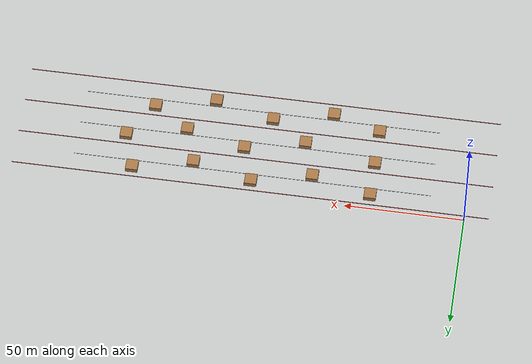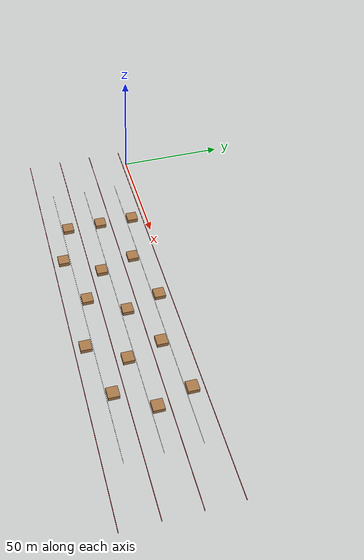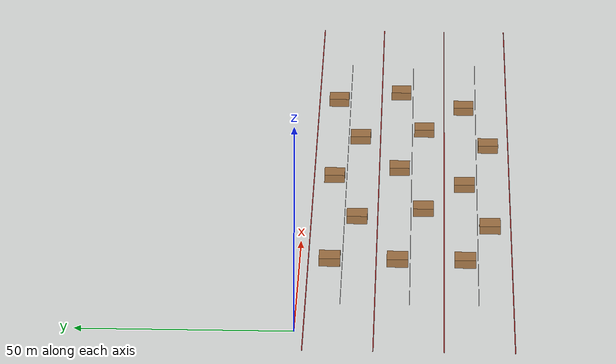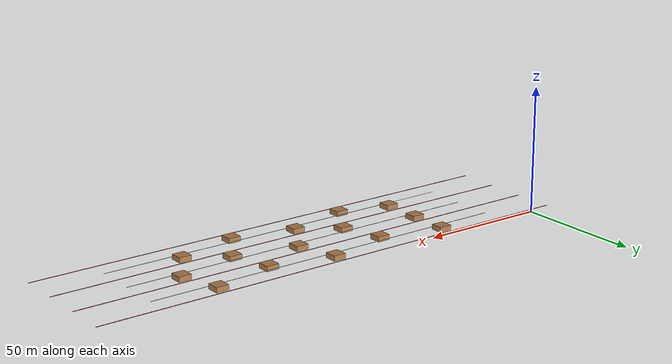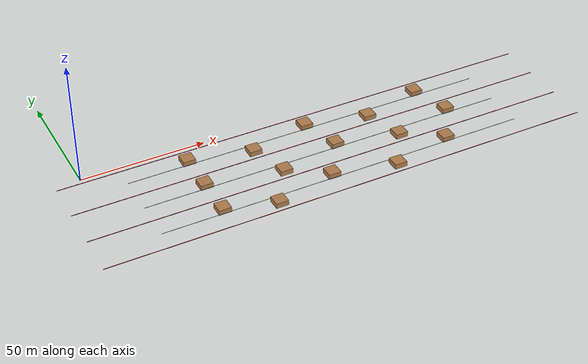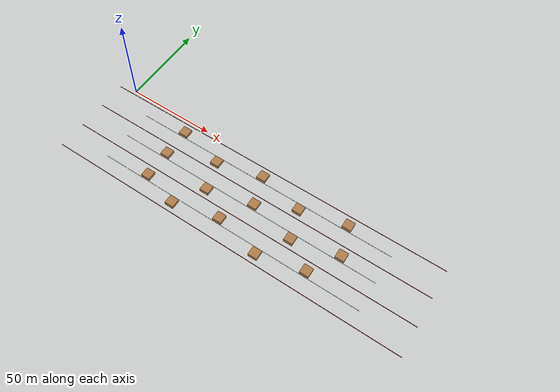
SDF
<sdf version="1.7">
 <world name="ocean_usv_world">
  <scene>
   <sky><clouds><speed>12</speed></clouds></sky>
   <grid>0</grid>
   <origin_visual>0</origin_visual>
   <ambient>0.4 0.4 0.4 1</ambient>
   <background>0.7 0.7 0.7 1</background>
   <shadows>1</shadows>
  </scene>
  <spherical_coordinates>
   <surface_model>EARTH_WGS84</surface_model>
   <world_frame_orientation>ENU</world_frame_orientation>
   <latitude_deg>-33.7242</latitude_deg>
   <longitude_deg>150.68</longitude_deg>
   <elevation>0</elevation>
   <heading_deg>0</heading_deg>
  </spherical_coordinates>
  <light name="sun" type="directional">
   <pose>0 0 10 0 -0 0</pose>
   <diffuse>0.8 0.8 0.8 1</diffuse>
   <specular>0.2 0.2 0.2 1</specular>
   <attenuation>
    <range>1000</range>
    <constant>0.9</constant>
    <linear>0.01</linear>
    <quadratic>0.001</quadratic>
   </attenuation>
   <direction>-0.5 0.1 -0.9</direction>
   <spot><inner_angle>0</inner_angle><outer_angle>0</outer_angle><falloff>0</falloff></spot>
  </light>
  <plugin name="wind" filename="libusv_gazebo_wind_plugin.so">
   <wind_obj>
    <name>wamv</name>
    <link_name>wamv/base_link</link_name>
    <coeff_vector>.5 .5 .33</coeff_vector>
   </wind_obj>
   <wind_direction>270</wind_direction>
   <wind_mean_velocity>0</wind_mean_velocity>
   <var_wind_gain_constants>0</var_wind_gain_constants>
   <var_wind_time_constants>2</var_wind_time_constants>
   <update_rate>10</update_rate>
   <topic_wind_speed>/vrx/debug/wind/speed</topic_wind_speed>
   <topic_wind_direction>/vrx/debug/wind/direction</topic_wind_direction>
  </plugin>
  <gravity>0 0 -9.8</gravity>
  <magnetic_field>6e-06 2.3e-05 -4.2e-05</magnetic_field>
  <atmosphere type="adiabatic"/>
  <physics type="ode">
   <max_step_size>0.001</max_step_size>
   <real_time_factor>1</real_time_factor>
   <real_time_update_rate>1000</real_time_update_rate>
  </physics>
  <model name="BOX_0">
   <link name="BOX_0_link">
    <inertial>
     <pose>40.0 -7.0 0.3 0 0 0</pose>
     <mass>10.0</mass>
     <inertia>
      <ixx>20.833333333333332</ixx>
      <ixy>0</ixy>
      <ixz>0</ixz>
      <iyy>20.833333333333332</iyy>
      <iyz>0</iyz>
      <izz>41.666666666666664</izz>
     </inertia>
    </inertial>
    <collision name="BOX_0_link_collision">
     <pose>40.0 -7.0 0.3 0 0 0</pose>
     <geometry><box><size>5.0 5.0 2.0</size></box></geometry>
     <surface>
      <contact><ode><kp>100000</kp><kd>100000</kd></ode></contact>
      <friction><ode><mu>10</mu><mu2>10</mu2></ode></friction>
     </surface>
    </collision>
    <visual name="BOX_0_link_visual">
     <pose>40.0 -7.0 0.3 0 0 0</pose>
     <geometry><box><size>5.0 5.0 2.0</size></box></geometry>
     <material>
      <script><name>Gazebo/WoodFloor</name><uri>file://media/materials/scripts/gazebo.material</uri></script>
     </material>
    </visual>
   </link>
   <plugin name="BuoyancyPlugin" filename="libbuoyancy_gazebo_plugin.so">
    <wave_model>ocean_waves</wave_model>
    <fluid_density>1000</fluid_density>
    <fluid_level>0</fluid_level>
    <linear_drag>1000.0</linear_drag>
    <angular_drag>200.0</angular_drag>
    <buoyancy name="buoyancy_base">
     <link_name>BOX_0_link</link_name>
     <pose>40.0 -7.0 0.3 0 0 0</pose>
     <geometry><sphere><radius>0.28794119114848615</radius></sphere></geometry>
    </buoyancy>
   </plugin>
  </model>
  <model name="BOX_1">
   <link name="BOX_1_link">
    <inertial>
     <pose>65.0 -13.0 0.3 0 0 0</pose>
     <mass>10.0</mass>
     <inertia>
      <ixx>20.833333333333332</ixx>
      <ixy>0</ixy>
      <ixz>0</ixz>
      <iyy>20.833333333333332</iyy>
      <iyz>0</iyz>
      <izz>41.666666666666664</izz>
     </inertia>
    </inertial>
    <collision name="BOX_1_link_collision">
     <pose>65.0 -13.0 0.3 0 0 0</pose>
     <geometry><box><size>5.0 5.0 2.0</size></box></geometry>
     <surface>
      <contact><ode><kp>100000</kp><kd>100000</kd></ode></contact>
      <friction><ode><mu>10</mu><mu2>10</mu2></ode></friction>
     </surface>
    </collision>
    <visual name="BOX_1_link_visual">
     <pose>65.0 -13.0 0.3 0 0 0</pose>
     <geometry><box><size>5.0 5.0 2.0</size></box></geometry>
     <material>
      <script><name>Gazebo/WoodFloor</name><uri>file://media/materials/scripts/gazebo.material</uri></script>
     </material>
    </visual>
   </link>
   <plugin name="BuoyancyPlugin" filename="libbuoyancy_gazebo_plugin.so">
    <wave_model>ocean_waves</wave_model>
    <fluid_density>1000</fluid_density>
    <fluid_level>0</fluid_level>
    <linear_drag>1000.0</linear_drag>
    <angular_drag>200.0</angular_drag>
    <buoyancy name="buoyancy_base">
     <link_name>BOX_1_link</link_name>
     <pose>65.0 -13.0 0.3 0 0 0</pose>
     <geometry><sphere><radius>0.28794119114848615</radius></sphere></geometry>
    </buoyancy>
   </plugin>
  </model>
  <model name="BOX_2">
   <link name="BOX_2_link">
    <inertial>
     <pose>90.0 -7.0 0.3 0 0 0</pose>
     <mass>10.0</mass>
     <inertia>
      <ixx>20.833333333333332</ixx>
      <ixy>0</ixy>
      <ixz>0</ixz>
      <iyy>20.833333333333332</iyy>
      <iyz>0</iyz>
      <izz>41.666666666666664</izz>
     </inertia>
    </inertial>
    <collision name="BOX_2_link_collision">
     <pose>90.0 -7.0 0.3 0 0 0</pose>
     <geometry><box><size>5.0 5.0 2.0</size></box></geometry>
     <surface>
      <contact><ode><kp>100000</kp><kd>100000</kd></ode></contact>
      <friction><ode><mu>10</mu><mu2>10</mu2></ode></friction>
     </surface>
    </collision>
    <visual name="BOX_2_link_visual">
     <pose>90.0 -7.0 0.3 0 0 0</pose>
     <geometry><box><size>5.0 5.0 2.0</size></box></geometry>
     <material>
      <script><name>Gazebo/WoodFloor</name><uri>file://media/materials/scripts/gazebo.material</uri></script>
     </material>
    </visual>
   </link>
   <plugin name="BuoyancyPlugin" filename="libbuoyancy_gazebo_plugin.so">
    <wave_model>ocean_waves</wave_model>
    <fluid_density>1000</fluid_density>
    <fluid_level>0</fluid_level>
    <linear_drag>1000.0</linear_drag>
    <angular_drag>200.0</angular_drag>
    <buoyancy name="buoyancy_base">
     <link_name>BOX_2_link</link_name>
     <pose>90.0 -7.0 0.3 0 0 0</pose>
     <geometry><sphere><radius>0.28794119114848615</radius></sphere></geometry>
    </buoyancy>
   </plugin>
  </model>
  <model name="BOX_3">
   <link name="BOX_3_link">
    <inertial>
     <pose>115.0 -13.0 0.3 0 0 0</pose>
     <mass>10.0</mass>
     <inertia>
      <ixx>20.833333333333332</ixx>
      <ixy>0</ixy>
      <ixz>0</ixz>
      <iyy>20.833333333333332</iyy>
      <iyz>0</iyz>
      <izz>41.666666666666664</izz>
     </inertia>
    </inertial>
    <collision name="BOX_3_link_collision">
     <pose>115.0 -13.0 0.3 0 0 0</pose>
     <geometry><box><size>5.0 5.0 2.0</size></box></geometry>
     <surface>
      <contact><ode><kp>100000</kp><kd>100000</kd></ode></contact>
      <friction><ode><mu>10</mu><mu2>10</mu2></ode></friction>
     </surface>
    </collision>
    <visual name="BOX_3_link_visual">
     <pose>115.0 -13.0 0.3 0 0 0</pose>
     <geometry><box><size>5.0 5.0 2.0</size></box></geometry>
     <material>
      <script><name>Gazebo/WoodFloor</name><uri>file://media/materials/scripts/gazebo.material</uri></script>
     </material>
    </visual>
   </link>
   <plugin name="BuoyancyPlugin" filename="libbuoyancy_gazebo_plugin.so">
    <wave_model>ocean_waves</wave_model>
    <fluid_density>1000</fluid_density>
    <fluid_level>0</fluid_level>
    <linear_drag>1000.0</linear_drag>
    <angular_drag>200.0</angular_drag>
    <buoyancy name="buoyancy_base">
     <link_name>BOX_3_link</link_name>
     <pose>115.0 -13.0 0.3 0 0 0</pose>
     <geometry><sphere><radius>0.28794119114848615</radius></sphere></geometry>
    </buoyancy>
   </plugin>
  </model>
  <model name="BOX_4">
   <link name="BOX_4_link">
    <inertial>
     <pose>140.0 -7.0 0.3 0 0 0</pose>
     <mass>10.0</mass>
     <inertia>
      <ixx>20.833333333333332</ixx>
      <ixy>0</ixy>
      <ixz>0</ixz>
      <iyy>20.833333333333332</iyy>
      <iyz>0</iyz>
      <izz>41.666666666666664</izz>
     </inertia>
    </inertial>
    <collision name="BOX_4_link_collision">
     <pose>140.0 -7.0 0.3 0 0 0</pose>
     <geometry><box><size>5.0 5.0 2.0</size></box></geometry>
     <surface>
      <contact><ode><kp>100000</kp><kd>100000</kd></ode></contact>
      <friction><ode><mu>10</mu><mu2>10</mu2></ode></friction>
     </surface>
    </collision>
    <visual name="BOX_4_link_visual">
     <pose>140.0 -7.0 0.3 0 0 0</pose>
     <geometry><box><size>5.0 5.0 2.0</size></box></geometry>
     <material>
      <script><name>Gazebo/WoodFloor</name><uri>file://media/materials/scripts/gazebo.material</uri></script>
     </material>
    </visual>
   </link>
   <plugin name="BuoyancyPlugin" filename="libbuoyancy_gazebo_plugin.so">
    <wave_model>ocean_waves</wave_model>
    <fluid_density>1000</fluid_density>
    <fluid_level>0</fluid_level>
    <linear_drag>1000.0</linear_drag>
    <angular_drag>200.0</angular_drag>
    <buoyancy name="buoyancy_base">
     <link_name>BOX_4_link</link_name>
     <pose>140.0 -7.0 0.3 0 0 0</pose>
     <geometry><sphere><radius>0.28794119114848615</radius></sphere></geometry>
    </buoyancy>
   </plugin>
  </model>
  <model name="BOX_5">
   <link name="BOX_5_link">
    <inertial>
     <pose>40.0 -23.0 0.3 0 0 0</pose>
     <mass>10.0</mass>
     <inertia>
      <ixx>20.833333333333332</ixx>
      <ixy>0</ixy>
      <ixz>0</ixz>
      <iyy>20.833333333333332</iyy>
      <iyz>0</iyz>
      <izz>41.666666666666664</izz>
     </inertia>
    </inertial>
    <collision name="BOX_5_link_collision">
     <pose>40.0 -23.0 0.3 0 0 0</pose>
     <geometry><box><size>5.0 5.0 2.0</size></box></geometry>
     <surface>
      <contact><ode><kp>100000</kp><kd>100000</kd></ode></contact>
      <friction><ode><mu>10</mu><mu2>10</mu2></ode></friction>
     </surface>
    </collision>
    <visual name="BOX_5_link_visual">
     <pose>40.0 -23.0 0.3 0 0 0</pose>
     <geometry><box><size>5.0 5.0 2.0</size></box></geometry>
     <material>
      <script><name>Gazebo/WoodFloor</name><uri>file://media/materials/scripts/gazebo.material</uri></script>
     </material>
    </visual>
   </link>
   <plugin name="BuoyancyPlugin" filename="libbuoyancy_gazebo_plugin.so">
    <wave_model>ocean_waves</wave_model>
    <fluid_density>1000</fluid_density>
    <fluid_level>0</fluid_level>
    <linear_drag>1000.0</linear_drag>
    <angular_drag>200.0</angular_drag>
    <buoyancy name="buoyancy_base">
     <link_name>BOX_5_link</link_name>
     <pose>40.0 -23.0 0.3 0 0 0</pose>
     <geometry><sphere><radius>0.28794119114848615</radius></sphere></geometry>
    </buoyancy>
   </plugin>
  </model>
  <model name="BOX_6">
   <link name="BOX_6_link">
    <inertial>
     <pose>70.0 -29.0 0.3 0 0 0</pose>
     <mass>10.0</mass>
     <inertia>
      <ixx>20.833333333333332</ixx>
      <ixy>0</ixy>
      <ixz>0</ixz>
      <iyy>20.833333333333332</iyy>
      <iyz>0</iyz>
      <izz>41.666666666666664</izz>
     </inertia>
    </inertial>
    <collision name="BOX_6_link_collision">
     <pose>70.0 -29.0 0.3 0 0 0</pose>
     <geometry><box><size>5.0 5.0 2.0</size></box></geometry>
     <surface>
      <contact><ode><kp>100000</kp><kd>100000</kd></ode></contact>
      <friction><ode><mu>10</mu><mu2>10</mu2></ode></friction>
     </surface>
    </collision>
    <visual name="BOX_6_link_visual">
     <pose>70.0 -29.0 0.3 0 0 0</pose>
     <geometry><box><size>5.0 5.0 2.0</size></box></geometry>
     <material>
      <script><name>Gazebo/WoodFloor</name><uri>file://media/materials/scripts/gazebo.material</uri></script>
     </material>
    </visual>
   </link>
   <plugin name="BuoyancyPlugin" filename="libbuoyancy_gazebo_plugin.so">
    <wave_model>ocean_waves</wave_model>
    <fluid_density>1000</fluid_density>
    <fluid_level>0</fluid_level>
    <linear_drag>1000.0</linear_drag>
    <angular_drag>200.0</angular_drag>
    <buoyancy name="buoyancy_base">
     <link_name>BOX_6_link</link_name>
     <pose>70.0 -29.0 0.3 0 0 0</pose>
     <geometry><sphere><radius>0.28794119114848615</radius></sphere></geometry>
    </buoyancy>
   </plugin>
  </model>
  <model name="BOX_7">
   <link name="BOX_7_link">
    <inertial>
     <pose>95.0 -23.0 0.3 0 0 0</pose>
     <mass>10.0</mass>
     <inertia>
      <ixx>20.833333333333332</ixx>
      <ixy>0</ixy>
      <ixz>0</ixz>
      <iyy>20.833333333333332</iyy>
      <iyz>0</iyz>
      <izz>41.666666666666664</izz>
     </inertia>
    </inertial>
    <collision name="BOX_7_link_collision">
     <pose>95.0 -23.0 0.3 0 0 0</pose>
     <geometry><box><size>5.0 5.0 2.0</size></box></geometry>
     <surface>
      <contact><ode><kp>100000</kp><kd>100000</kd></ode></contact>
      <friction><ode><mu>10</mu><mu2>10</mu2></ode></friction>
     </surface>
    </collision>
    <visual name="BOX_7_link_visual">
     <pose>95.0 -23.0 0.3 0 0 0</pose>
     <geometry><box><size>5.0 5.0 2.0</size></box></geometry>
     <material>
      <script><name>Gazebo/WoodFloor</name><uri>file://media/materials/scripts/gazebo.material</uri></script>
     </material>
    </visual>
   </link>
   <plugin name="BuoyancyPlugin" filename="libbuoyancy_gazebo_plugin.so">
    <wave_model>ocean_waves</wave_model>
    <fluid_density>1000</fluid_density>
    <fluid_level>0</fluid_level>
    <linear_drag>1000.0</linear_drag>
    <angular_drag>200.0</angular_drag>
    <buoyancy name="buoyancy_base">
     <link_name>BOX_7_link</link_name>
     <pose>95.0 -23.0 0.3 0 0 0</pose>
     <geometry><sphere><radius>0.28794119114848615</radius></sphere></geometry>
    </buoyancy>
   </plugin>
  </model>
  <model name="BOX_8">
   <link name="BOX_8_link">
    <inertial>
     <pose>120.0 -29.0 0.3 0 0 0</pose>
     <mass>10.0</mass>
     <inertia>
      <ixx>20.833333333333332</ixx>
      <ixy>0</ixy>
      <ixz>0</ixz>
      <iyy>20.833333333333332</iyy>
      <iyz>0</iyz>
      <izz>41.666666666666664</izz>
     </inertia>
    </inertial>
    <collision name="BOX_8_link_collision">
     <pose>120.0 -29.0 0.3 0 0 0</pose>
     <geometry><box><size>5.0 5.0 2.0</size></box></geometry>
     <surface>
      <contact><ode><kp>100000</kp><kd>100000</kd></ode></contact>
      <friction><ode><mu>10</mu><mu2>10</mu2></ode></friction>
     </surface>
    </collision>
    <visual name="BOX_8_link_visual">
     <pose>120.0 -29.0 0.3 0 0 0</pose>
     <geometry><box><size>5.0 5.0 2.0</size></box></geometry>
     <material>
      <script><name>Gazebo/WoodFloor</name><uri>file://media/materials/scripts/gazebo.material</uri></script>
     </material>
    </visual>
   </link>
   <plugin name="BuoyancyPlugin" filename="libbuoyancy_gazebo_plugin.so">
    <wave_model>ocean_waves</wave_model>
    <fluid_density>1000</fluid_density>
    <fluid_level>0</fluid_level>
    <linear_drag>1000.0</linear_drag>
    <angular_drag>200.0</angular_drag>
    <buoyancy name="buoyancy_base">
     <link_name>BOX_8_link</link_name>
     <pose>120.0 -29.0 0.3 0 0 0</pose>
     <geometry><sphere><radius>0.28794119114848615</radius></sphere></geometry>
    </buoyancy>
   </plugin>
  </model>
  <model name="BOX_9">
   <link name="BOX_9_link">
    <inertial>
     <pose>145.0 -23.0 0.3 0 0 0</pose>
     <mass>10.0</mass>
     <inertia>
      <ixx>20.833333333333332</ixx>
      <ixy>0</ixy>
      <ixz>0</ixz>
      <iyy>20.833333333333332</iyy>
      <iyz>0</iyz>
      <izz>41.666666666666664</izz>
     </inertia>
    </inertial>
    <collision name="BOX_9_link_collision">
     <pose>145.0 -23.0 0.3 0 0 0</pose>
     <geometry><box><size>5.0 5.0 2.0</size></box></geometry>
     <surface>
      <contact><ode><kp>100000</kp><kd>100000</kd></ode></contact>
      <friction><ode><mu>10</mu><mu2>10</mu2></ode></friction>
     </surface>
    </collision>
    <visual name="BOX_9_link_visual">
     <pose>145.0 -23.0 0.3 0 0 0</pose>
     <geometry><box><size>5.0 5.0 2.0</size></box></geometry>
     <material>
      <script><name>Gazebo/WoodFloor</name><uri>file://media/materials/scripts/gazebo.material</uri></script>
     </material>
    </visual>
   </link>
   <plugin name="BuoyancyPlugin" filename="libbuoyancy_gazebo_plugin.so">
    <wave_model>ocean_waves</wave_model>
    <fluid_density>1000</fluid_density>
    <fluid_level>0</fluid_level>
    <linear_drag>1000.0</linear_drag>
    <angular_drag>200.0</angular_drag>
    <buoyancy name="buoyancy_base">
     <link_name>BOX_9_link</link_name>
     <pose>145.0 -23.0 0.3 0 0 0</pose>
     <geometry><sphere><radius>0.28794119114848615</radius></sphere></geometry>
    </buoyancy>
   </plugin>
  </model>
  <model name="BOX_10">
   <link name="BOX_10_link">
    <inertial>
     <pose>40.0 -39.0 0.3 0 0 0</pose>
     <mass>10.0</mass>
     <inertia>
      <ixx>20.833333333333332</ixx>
      <ixy>0</ixy>
      <ixz>0</ixz>
      <iyy>20.833333333333332</iyy>
      <iyz>0</iyz>
      <izz>41.666666666666664</izz>
     </inertia>
    </inertial>
    <collision name="BOX_10_link_collision">
     <pose>40.0 -39.0 0.3 0 0 0</pose>
     <geometry><box><size>5.0 5.0 2.0</size></box></geometry>
     <surface>
      <contact><ode><kp>100000</kp><kd>100000</kd></ode></contact>
      <friction><ode><mu>10</mu><mu2>10</mu2></ode></friction>
     </surface>
    </collision>
    <visual name="BOX_10_link_visual">
     <pose>40.0 -39.0 0.3 0 0 0</pose>
     <geometry><box><size>5.0 5.0 2.0</size></box></geometry>
     <material>
      <script><name>Gazebo/WoodFloor</name><uri>file://media/materials/scripts/gazebo.material</uri></script>
     </material>
    </visual>
   </link>
   <plugin name="BuoyancyPlugin" filename="libbuoyancy_gazebo_plugin.so">
    <wave_model>ocean_waves</wave_model>
    <fluid_density>1000</fluid_density>
    <fluid_level>0</fluid_level>
    <linear_drag>1000.0</linear_drag>
    <angular_drag>200.0</angular_drag>
    <buoyancy name="buoyancy_base">
     <link_name>BOX_10_link</link_name>
     <pose>40.0 -39.0 0.3 0 0 0</pose>
     <geometry><sphere><radius>0.28794119114848615</radius></sphere></geometry>
    </buoyancy>
   </plugin>
  </model>
  <model name="BOX_11">
   <link name="BOX_11_link">
    <inertial>
     <pose>60.0 -45.0 0.3 0 0 0</pose>
     <mass>10.0</mass>
     <inertia>
      <ixx>20.833333333333332</ixx>
      <ixy>0</ixy>
      <ixz>0</ixz>
      <iyy>20.833333333333332</iyy>
      <iyz>0</iyz>
      <izz>41.666666666666664</izz>
     </inertia>
    </inertial>
    <collision name="BOX_11_link_collision">
     <pose>60.0 -45.0 0.3 0 0 0</pose>
     <geometry><box><size>5.0 5.0 2.0</size></box></geometry>
     <surface>
      <contact><ode><kp>100000</kp><kd>100000</kd></ode></contact>
      <friction><ode><mu>10</mu><mu2>10</mu2></ode></friction>
     </surface>
    </collision>
    <visual name="BOX_11_link_visual">
     <pose>60.0 -45.0 0.3 0 0 0</pose>
     <geometry><box><size>5.0 5.0 2.0</size></box></geometry>
     <material>
      <script><name>Gazebo/WoodFloor</name><uri>file://media/materials/scripts/gazebo.material</uri></script>
     </material>
    </visual>
   </link>
   <plugin name="BuoyancyPlugin" filename="libbuoyancy_gazebo_plugin.so">
    <wave_model>ocean_waves</wave_model>
    <fluid_density>1000</fluid_density>
    <fluid_level>0</fluid_level>
    <linear_drag>1000.0</linear_drag>
    <angular_drag>200.0</angular_drag>
    <buoyancy name="buoyancy_base">
     <link_name>BOX_11_link</link_name>
     <pose>60.0 -45.0 0.3 0 0 0</pose>
     <geometry><sphere><radius>0.28794119114848615</radius></sphere></geometry>
    </buoyancy>
   </plugin>
  </model>
  <model name="BOX_12">
   <link name="BOX_12_link">
    <inertial>
     <pose>85.0 -39.0 0.3 0 0 0</pose>
     <mass>10.0</mass>
     <inertia>
      <ixx>20.833333333333332</ixx>
      <ixy>0</ixy>
      <ixz>0</ixz>
      <iyy>20.833333333333332</iyy>
      <iyz>0</iyz>
      <izz>41.666666666666664</izz>
     </inertia>
    </inertial>
    <collision name="BOX_12_link_collision">
     <pose>85.0 -39.0 0.3 0 0 0</pose>
     <geometry><box><size>5.0 5.0 2.0</size></box></geometry>
     <surface>
      <contact><ode><kp>100000</kp><kd>100000</kd></ode></contact>
      <friction><ode><mu>10</mu><mu2>10</mu2></ode></friction>
     </surface>
    </collision>
    <visual name="BOX_12_link_visual">
     <pose>85.0 -39.0 0.3 0 0 0</pose>
     <geometry><box><size>5.0 5.0 2.0</size></box></geometry>
     <material>
      <script><name>Gazebo/WoodFloor</name><uri>file://media/materials/scripts/gazebo.material</uri></script>
     </material>
    </visual>
   </link>
   <plugin name="BuoyancyPlugin" filename="libbuoyancy_gazebo_plugin.so">
    <wave_model>ocean_waves</wave_model>
    <fluid_density>1000</fluid_density>
    <fluid_level>0</fluid_level>
    <linear_drag>1000.0</linear_drag>
    <angular_drag>200.0</angular_drag>
    <buoyancy name="buoyancy_base">
     <link_name>BOX_12_link</link_name>
     <pose>85.0 -39.0 0.3 0 0 0</pose>
     <geometry><sphere><radius>0.28794119114848615</radius></sphere></geometry>
    </buoyancy>
   </plugin>
  </model>
  <model name="BOX_13">
   <link name="BOX_13_link">
    <inertial>
     <pose>110.0 -45.0 0.3 0 0 0</pose>
     <mass>10.0</mass>
     <inertia>
      <ixx>20.833333333333332</ixx>
      <ixy>0</ixy>
      <ixz>0</ixz>
      <iyy>20.833333333333332</iyy>
      <iyz>0</iyz>
      <izz>41.666666666666664</izz>
     </inertia>
    </inertial>
    <collision name="BOX_13_link_collision">
     <pose>110.0 -45.0 0.3 0 0 0</pose>
     <geometry><box><size>5.0 5.0 2.0</size></box></geometry>
     <surface>
      <contact><ode><kp>100000</kp><kd>100000</kd></ode></contact>
      <friction><ode><mu>10</mu><mu2>10</mu2></ode></friction>
     </surface>
    </collision>
    <visual name="BOX_13_link_visual">
     <pose>110.0 -45.0 0.3 0 0 0</pose>
     <geometry><box><size>5.0 5.0 2.0</size></box></geometry>
     <material>
      <script><name>Gazebo/WoodFloor</name><uri>file://media/materials/scripts/gazebo.material</uri></script>
     </material>
    </visual>
   </link>
   <plugin name="BuoyancyPlugin" filename="libbuoyancy_gazebo_plugin.so">
    <wave_model>ocean_waves</wave_model>
    <fluid_density>1000</fluid_density>
    <fluid_level>0</fluid_level>
    <linear_drag>1000.0</linear_drag>
    <angular_drag>200.0</angular_drag>
    <buoyancy name="buoyancy_base">
     <link_name>BOX_13_link</link_name>
     <pose>110.0 -45.0 0.3 0 0 0</pose>
     <geometry><sphere><radius>0.28794119114848615</radius></sphere></geometry>
    </buoyancy>
   </plugin>
  </model>
  <model name="BOX_14">
   <link name="BOX_14_link">
    <inertial>
     <pose>135.0 -39.0 0.3 0 0 0</pose>
     <mass>10.0</mass>
     <inertia>
      <ixx>20.833333333333332</ixx>
      <ixy>0</ixy>
      <ixz>0</ixz>
      <iyy>20.833333333333332</iyy>
      <iyz>0</iyz>
      <izz>41.666666666666664</izz>
     </inertia>
    </inertial>
    <collision name="BOX_14_link_collision">
     <pose>135.0 -39.0 0.3 0 0 0</pose>
     <geometry><box><size>5.0 5.0 2.0</size></box></geometry>
     <surface>
      <contact><ode><kp>100000</kp><kd>100000</kd></ode></contact>
      <friction><ode><mu>10</mu><mu2>10</mu2></ode></friction>
     </surface>
    </collision>
    <visual name="BOX_14_link_visual">
     <pose>135.0 -39.0 0.3 0 0 0</pose>
     <geometry><box><size>5.0 5.0 2.0</size></box></geometry>
     <material>
      <script><name>Gazebo/WoodFloor</name><uri>file://media/materials/scripts/gazebo.material</uri></script>
     </material>
    </visual>
   </link>
   <plugin name="BuoyancyPlugin" filename="libbuoyancy_gazebo_plugin.so">
    <wave_model>ocean_waves</wave_model>
    <fluid_density>1000</fluid_density>
    <fluid_level>0</fluid_level>
    <linear_drag>1000.0</linear_drag>
    <angular_drag>200.0</angular_drag>
    <buoyancy name="buoyancy_base">
     <link_name>BOX_14_link</link_name>
     <pose>135.0 -39.0 0.3 0 0 0</pose>
     <geometry><sphere><radius>0.28794119114848615</radius></sphere></geometry>
    </buoyancy>
   </plugin>
  </model>
  <model name="Boundary_Top">
   <static>true</static>
   <link name="boundary_top_link">
    <visual name="boundary_top_visual">
     <pose>90 -2 0.05 0 0 0</pose>
     <geometry><box><size>200 0.2 0.1</size></box></geometry>
     <material>
      <script><name>Gazebo/Red</name><uri>file://media/materials/scripts/gazebo.material</uri></script>
     </material>
    </visual>
    <collision name="boundary_top_collision">
     <pose>90 -2 0.05 0 0 0</pose>
     <geometry><box><size>200 0.2 0.1</size></box></geometry>
    </collision>
   </link>
  </model>
  <model name="Boundary_1_2">
   <static>true</static>
   <link name="boundary_1_2_link">
    <visual name="boundary_1_2_visual">
     <pose>90 -18 0.05 0 0 0</pose>
     <geometry><box><size>200 0.2 0.1</size></box></geometry>
     <material>
      <script><name>Gazebo/Red</name><uri>file://media/materials/scripts/gazebo.material</uri></script>
     </material>
    </visual>
    <collision name="boundary_1_2_collision">
     <pose>90 -18 0.05 0 0 0</pose>
     <geometry><box><size>200 0.2 0.1</size></box></geometry>
    </collision>
   </link>
  </model>
  <model name="Boundary_2_3">
   <static>true</static>
   <link name="boundary_2_3_link">
    <visual name="boundary_2_3_visual">
     <pose>90 -34 0.05 0 0 0</pose>
     <geometry><box><size>200 0.2 0.1</size></box></geometry>
     <material>
      <script><name>Gazebo/Red</name><uri>file://media/materials/scripts/gazebo.material</uri></script>
     </material>
    </visual>
    <collision name="boundary_2_3_collision">
     <pose>90 -34 0.05 0 0 0</pose>
     <geometry><box><size>200 0.2 0.1</size></box></geometry>
    </collision>
   </link>
  </model>
  <model name="Boundary_Bottom">
   <static>true</static>
   <link name="boundary_bottom_link">
    <visual name="boundary_bottom_visual">
     <pose>90 -50 0.05 0 0 0</pose>
     <geometry><box><size>200 0.2 0.1</size></box></geometry>
     <material>
      <script><name>Gazebo/Red</name><uri>file://media/materials/scripts/gazebo.material</uri></script>
     </material>
    </visual>
    <collision name="boundary_bottom_collision">
     <pose>90 -50 0.05 0 0 0</pose>
     <geometry><box><size>200 0.2 0.1</size></box></geometry>
    </collision>
   </link>
  </model>
  <model name="Channel_Boundary_1">
   <static>true</static>
   <link name="channel1_link">
    <visual name="channel1_visual">
     <pose>90 -10 0.05 0 0 0</pose>
     <geometry><box><size>150 0.1 0.1</size></box></geometry>
     <material>
      <script><name>Gazebo/White</name><uri>file://media/materials/scripts/gazebo.material</uri></script>
     </material>
    </visual>
    <collision name="channel1_collision">
     <pose>90 -10 0.05 0 0 0</pose>
     <geometry><box><size>150 0.1 0.1</size></box></geometry>
    </collision>
   </link>
  </model>
  <model name="Channel_Boundary_2">
   <static>true</static>
   <link name="channel2_link">
    <visual name="channel2_visual">
     <pose>90 -26 0.05 0 0 0</pose>
     <geometry><box><size>150 0.1 0.1</size></box></geometry>
     <material>
      <script><name>Gazebo/White</name><uri>file://media/materials/scripts/gazebo.material</uri></script>
     </material>
    </visual>
    <collision name="channel2_collision">
     <pose>90 -26 0.05 0 0 0</pose>
     <geometry><box><size>150 0.1 0.1</size></box></geometry>
    </collision>
   </link>
  </model>
  <model name="Channel_Boundary_3">
   <static>true</static>
   <link name="channel3_link">
    <visual name="channel3_visual">
     <pose>90 -42 0.05 0 0 0</pose>
     <geometry><box><size>150 0.1 0.1</size></box></geometry>
     <material>
      <script><name>Gazebo/White</name><uri>file://media/materials/scripts/gazebo.material</uri></script>
     </material>
    </visual>
    <collision name="channel3_collision">
     <pose>90 -42 0.05 0 0 0</pose>
     <geometry><box><size>150 0.1 0.1</size></box></geometry>
    </collision>
   </link>
  </model>
  <model name="Centerline_1">
   <static>true</static>
   <link name="centerline1_link">
    <visual name="centerline1_visual">
     <pose>90 -10 0.05 0 0 0</pose>
     <geometry><box><size>150 0.05 0.05</size></box></geometry>
     <material>
      <script><name>Gazebo/DarkGrey</name><uri>file://media/materials/scripts/gazebo.material</uri></script>
     </material>
    </visual>
   </link>
  </model>
  <model name="Centerline_2">
   <static>true</static>
   <link name="centerline2_link">
    <visual name="centerline2_visual">
     <pose>90 -26 0.05 0 0 0</pose>
     <geometry><box><size>150 0.05 0.05</size></box></geometry>
     <material>
      <script><name>Gazebo/DarkGrey</name><uri>file://media/materials/scripts/gazebo.material</uri></script>
     </material>
    </visual>
   </link>
  </model>
  <model name="Centerline_3">
   <static>true</static>
   <link name="centerline3_link">
    <visual name="centerline3_visual">
     <pose>90 -42 0.05 0 0 0</pose>
     <geometry><box><size>150 0.05 0.05</size></box></geometry>
     <material>
      <script><name>Gazebo/DarkGrey</name><uri>file://media/materials/scripts/gazebo.material</uri></script>
     </material>
    </visual>
   </link>
  </model>
 </world>
</sdf>
